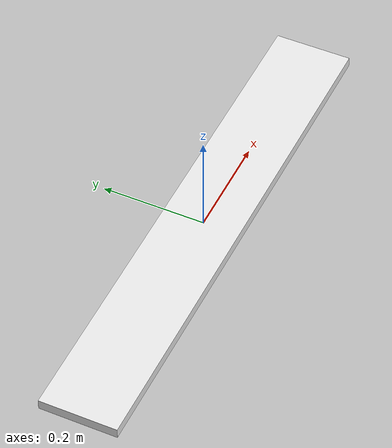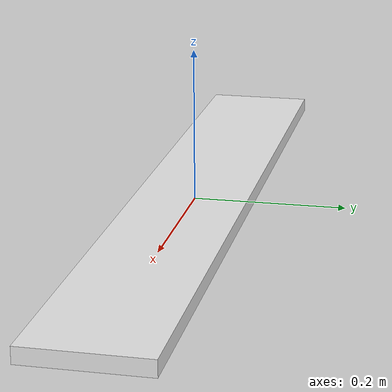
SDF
<?xml version='1.0'?>
<sdf version='1.6'>
  <model name='icl_glue'>
    <link name='link_0'>
      <inertial>
        <mass>1</mass>
        <inertia>
          <ixx>0.166667</ixx>
          <ixy>0</ixy>
          <ixz>0</ixz>
          <iyy>0.166667</iyy>
          <iyz>0</iyz>
          <izz>0.166667</izz>
        </inertia>
        <pose frame=''>0 0 0 0 -0 0</pose>
      </inertial>
      <pose frame=''>-0 0 0 0 -0 0</pose>
      <gravity>0</gravity>
      <self_collide>0</self_collide>
      <kinematic>0</kinematic>
      <enable_wind>0</enable_wind>
      <visual name='visual'>
        <pose frame=''>0 0 0 0 -0 0</pose>
        <geometry>
          <box>
            <size>1 0.15 0.02</size>
          </box>
        </geometry>
        <material>
          <lighting>1</lighting>
          <script>
            <uri>file://media/materials/scripts/gazebo.material</uri>
            <name>Gazebo/White</name>
          </script>
        </material>
        <transparency>0.1</transparency>
        <cast_shadows>0</cast_shadows>
      </visual>
    </link>
    <static>1</static>
    <allow_auto_disable>1</allow_auto_disable>
  </model>
</sdf>
